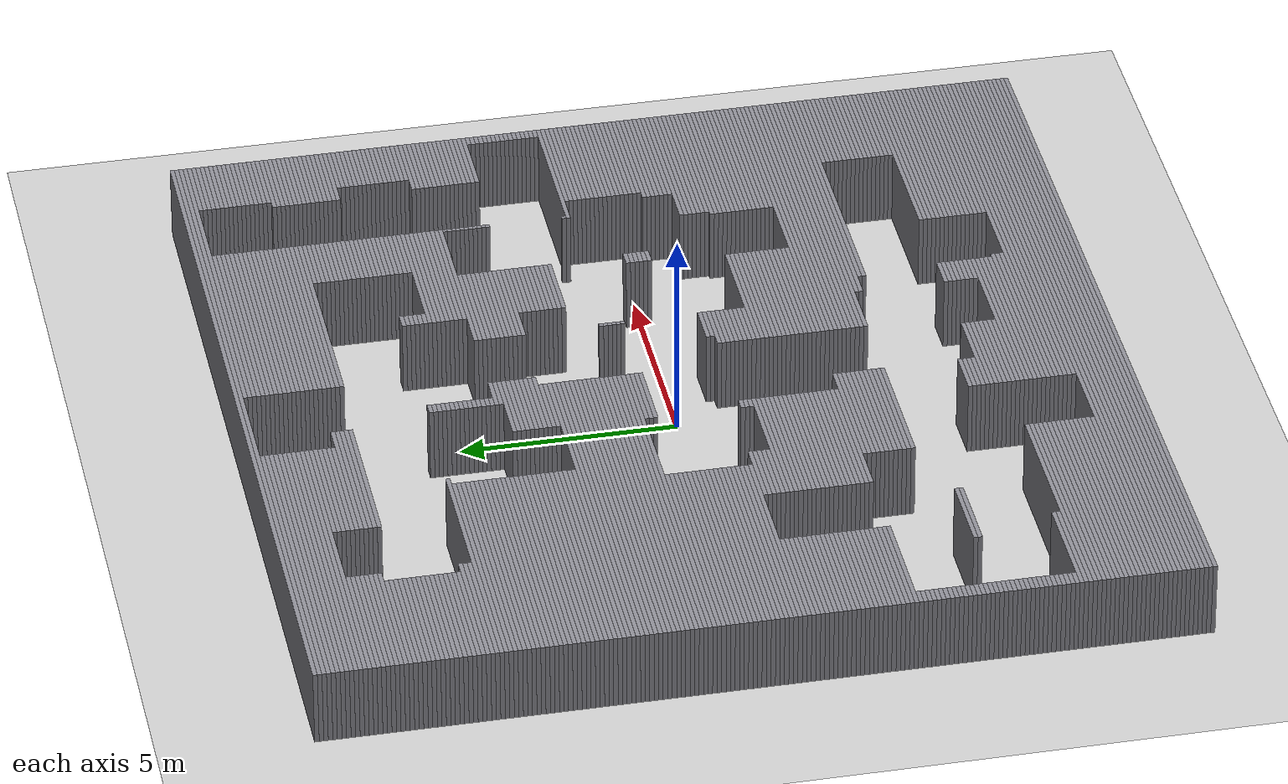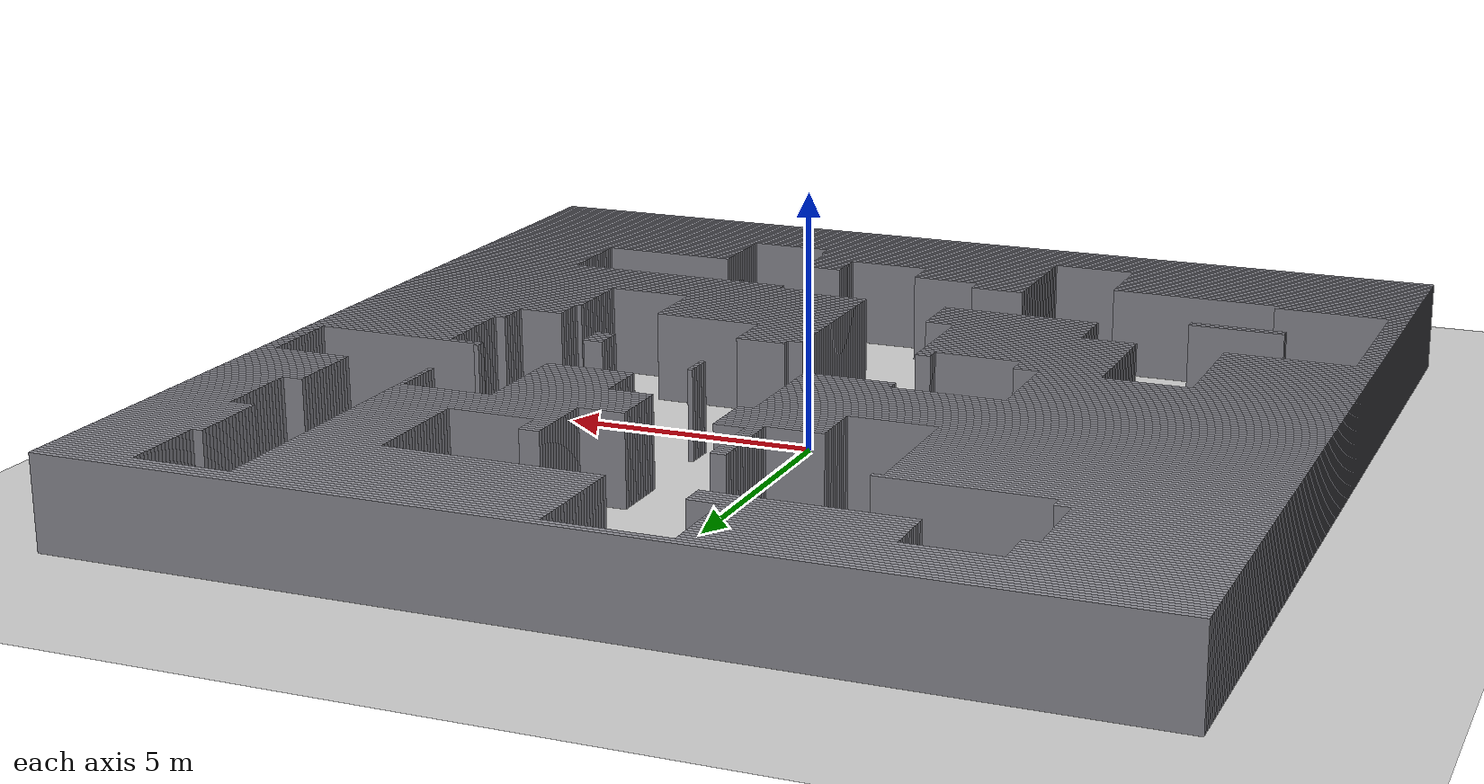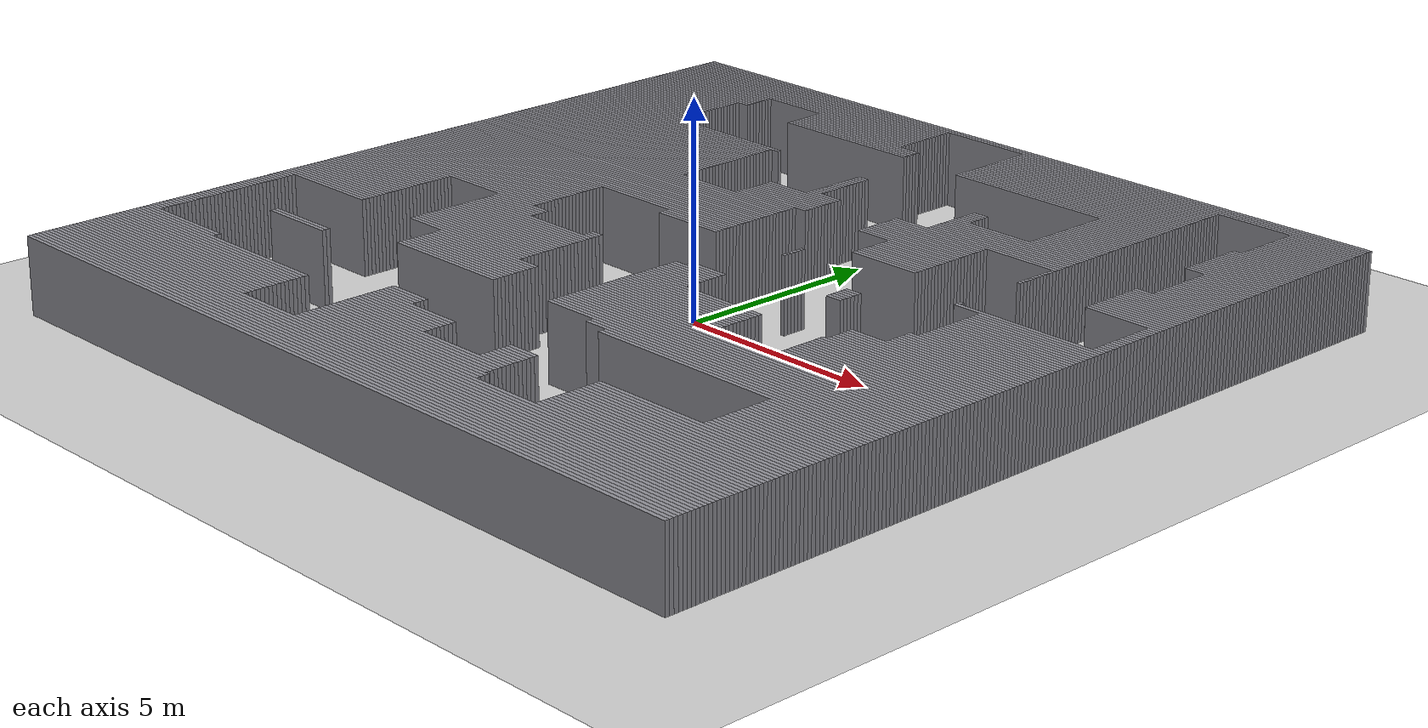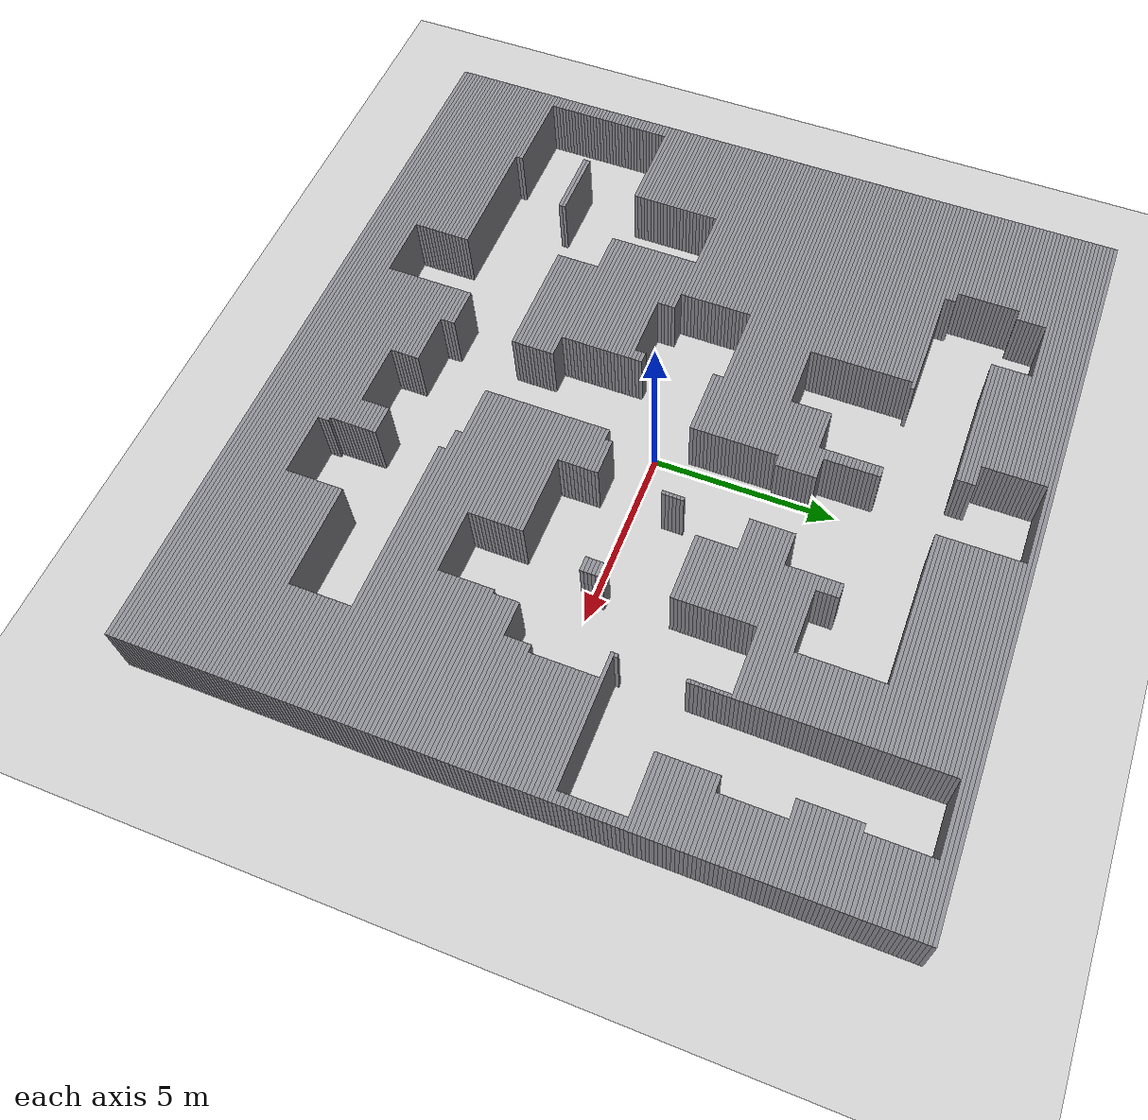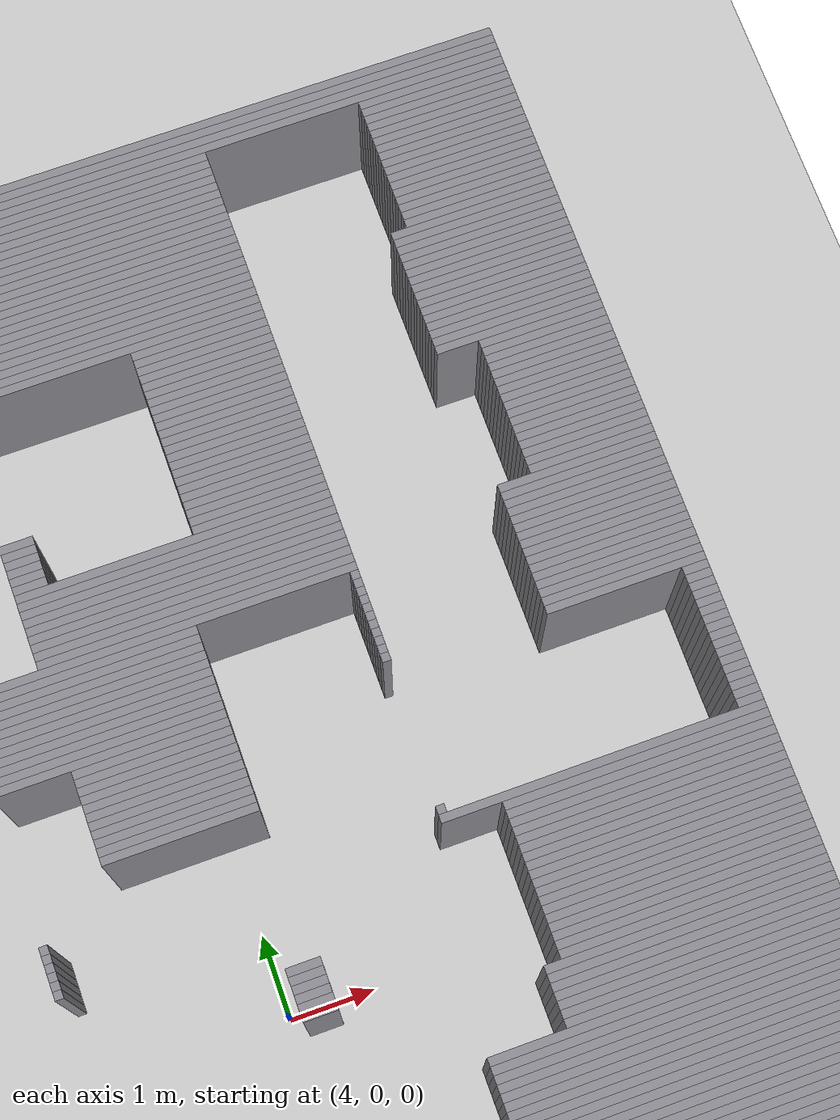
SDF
<?xml version='1.0'?>
<sdf version='1.6'><world name='default'>
  <include><uri>model://sun</uri></include>
  <include><uri>model://ground_plane</uri></include>
  <include><uri>model://dep_car_map_0000_2a91f458</uri></include>
  <physics name='default_physics' type='ode'><max_step_size>0.002</max_step_size><real_time_update_rate>500</real_time_update_rate></physics>
</world></sdf>
